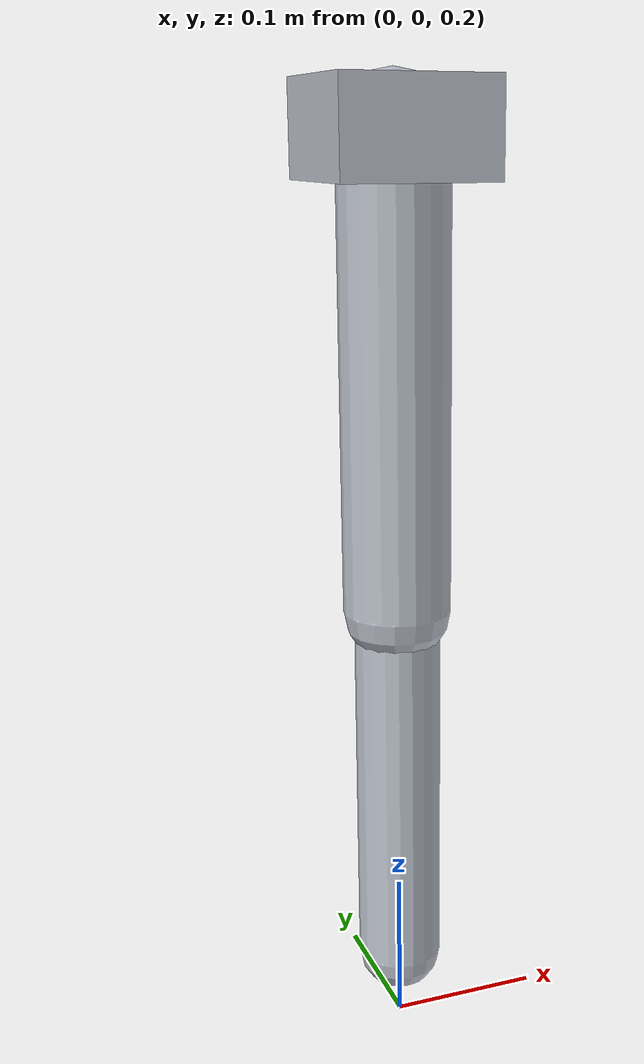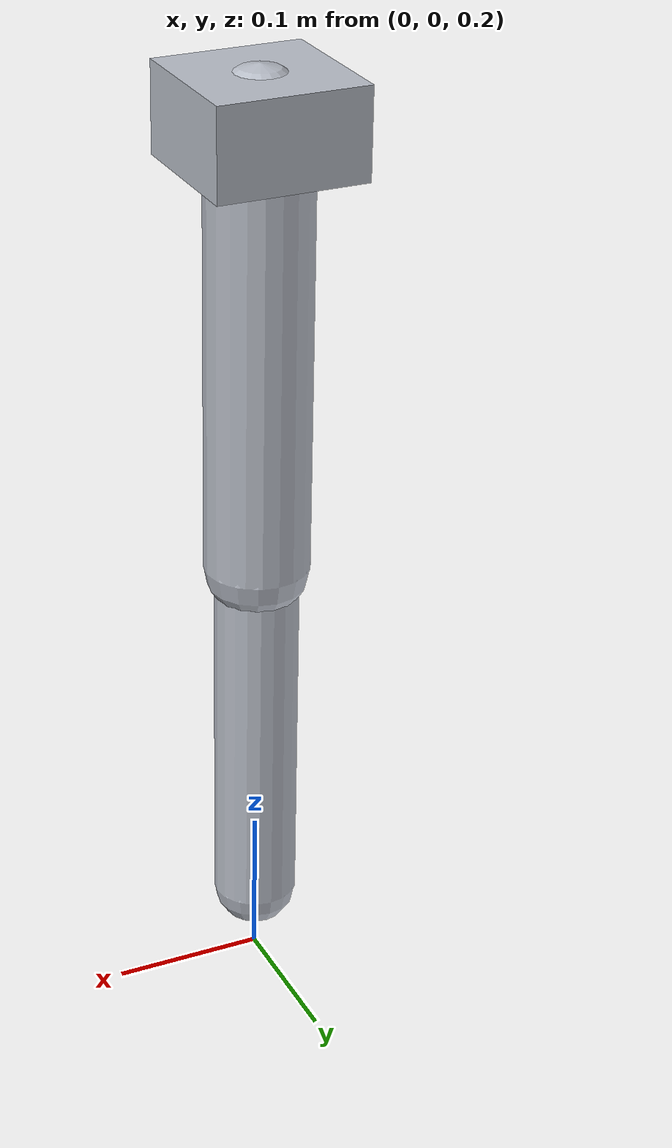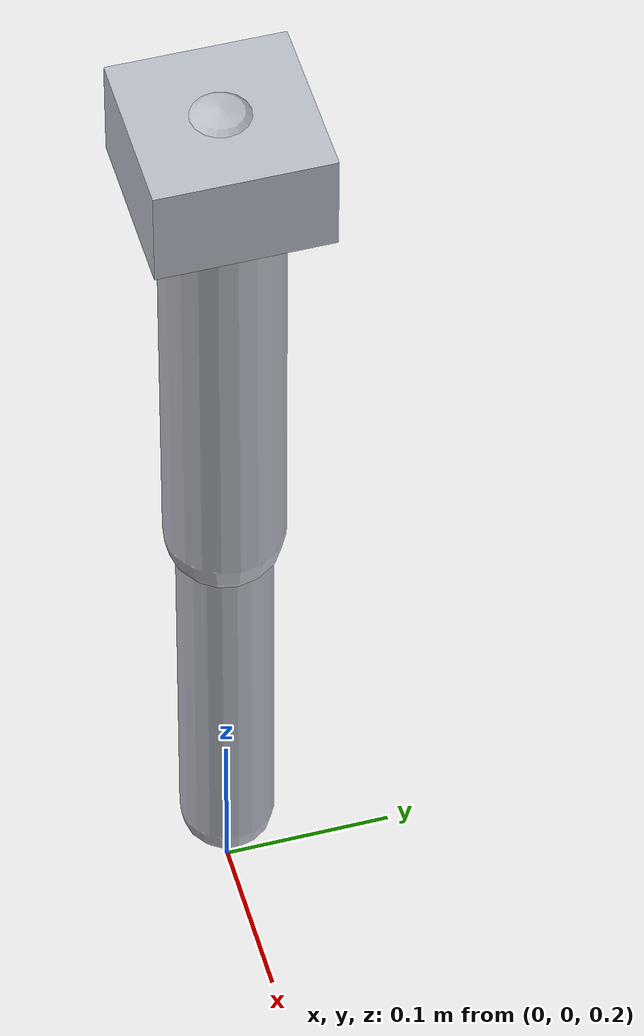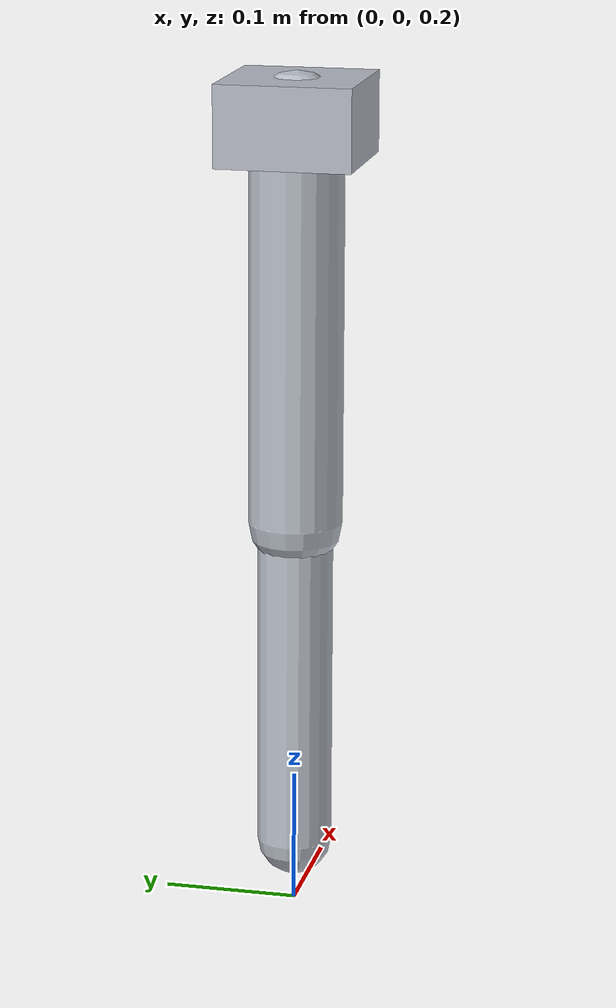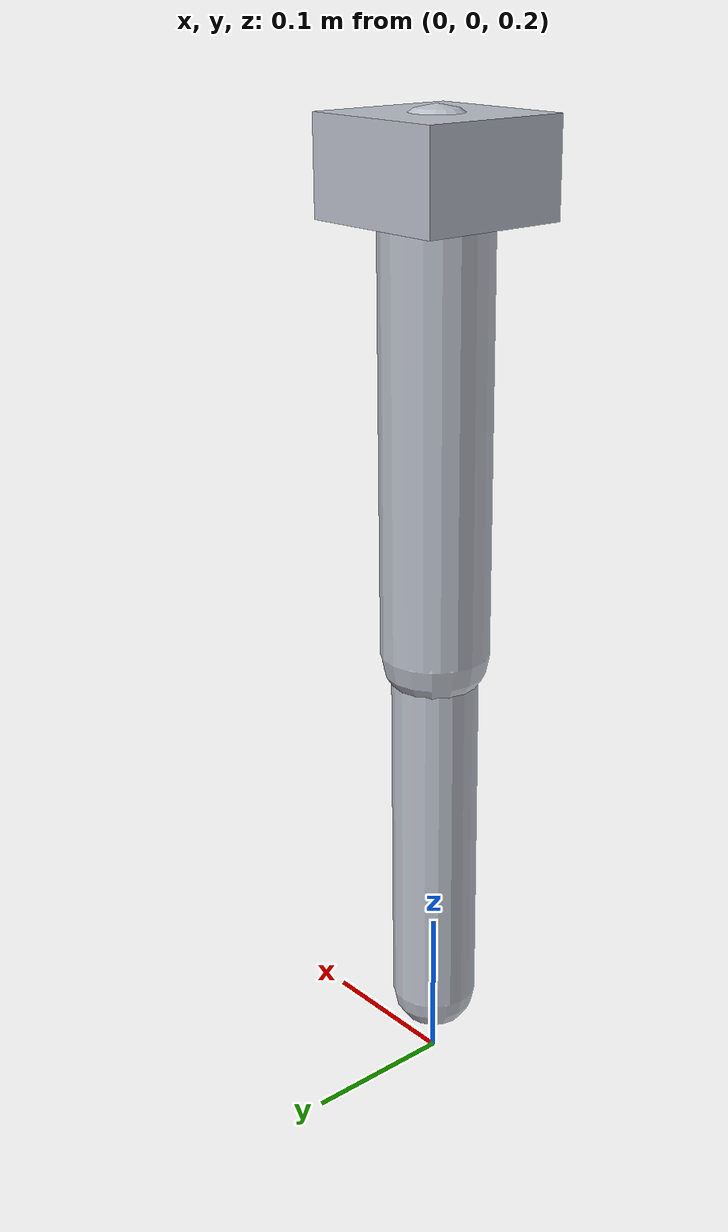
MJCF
<mujoco model="arm2_floating_f15l06">
  <compiler angle="radian" autolimits="true"/>

  <option timestep="0.002" integrator="implicitfast" gravity="0 0 -9.81">
    <flag contact="disable"/>
  </option>

  <default>
    <joint type="hinge" axis="0 1 0" range="-3.0 3.0" damping="0.01" armature="0.05"/>
    <geom type="capsule" rgba="0.72 0.74 0.78 1" contype="0" conaffinity="0"/>
  </default>

  <worldbody>
    <light pos="0 0 2"/>
    <body name="base" pos="0 0 0.8">
      <!-- The one line that separates this model from arm2.xml. -->
      <freejoint name="root"/>
      <geom name="base_g" type="box" size="0.05 0.05 0.03" mass="2.0"/>
      <body name="upper" pos="0 0 0">
        <joint name="shoulder"/>
        <geom name="upper_g" fromto="0 0 0 0 0 -0.30" size="0.035" mass="1.0"/>
        <body name="lower" pos="0 0 -0.30">
          <joint name="elbow"/>
          <geom name="lower_g" fromto="0 0 0 0 0 -0.25" size="0.028" mass="0.6"/>
        </body>
      </body>
    </body>
  </worldbody>

  <actuator>
    <motor name="shoulder_m" joint="shoulder" gear="1" ctrlrange="-8 8"/>
    <motor name="elbow_m"    joint="elbow"    gear="1" ctrlrange="-3 3"/>
  </actuator>

  <keyframe>
    <!-- 9 numbers, not 4: 3 translation + 4 quaternion + 2 hinges. qvel would take 8. -->
    <key name="hanging" qpos="0 0 0.8 1 0 0 0 0 0" qvel="0 0 0 0 0 0 0 0" ctrl="0 0"/>
  </keyframe>
</mujoco>
